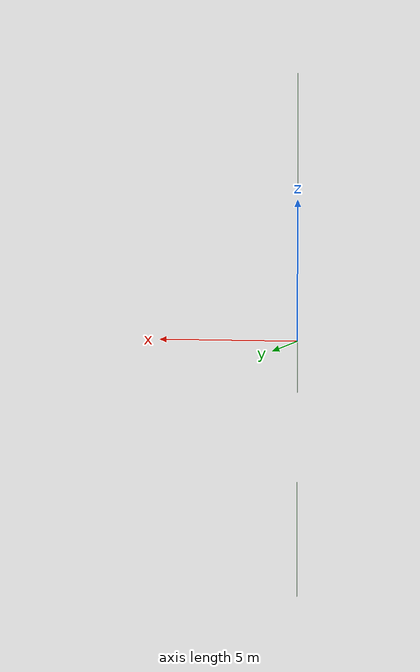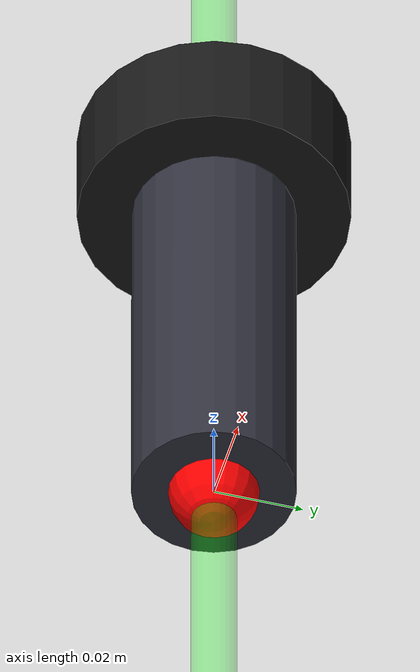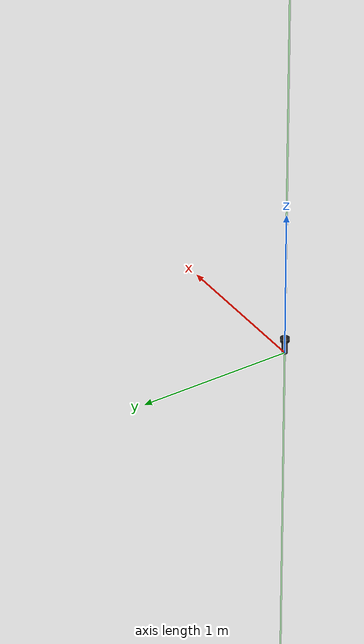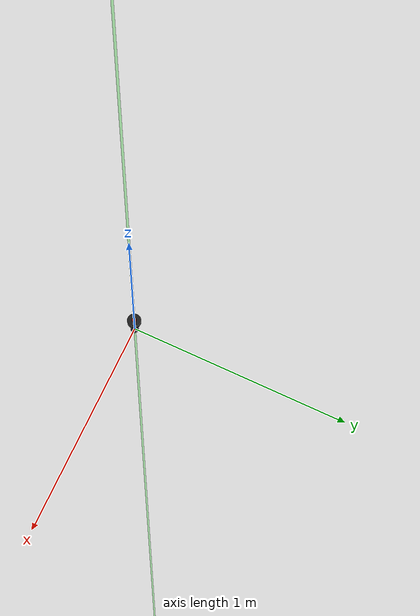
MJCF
<!--
  Vacuum 흡착 EE. robosuite에 진공 그리퍼가 없어 GripperModel 규약
  (worldbody → base → eef + 표준 site/sensor)을 지키는 커스텀 MJCF.
  외형: worldbody geom. 흡착: actuator/adhesion.
-->
<mujoco model="vacuum_gripper">
    <worldbody>
        <body name="vacuum_base" pos="0 0 0">
            <!-- 힘/토크 센서 프레임 -->
            <site name="ft_frame" pos="0 0 0" size="0.01" rgba="1 0 0 1" type="sphere" group="1"/>
            <inertial pos="0 0 0.05" mass="0.3" diaginertia="1e-3 1e-3 1e-3"/>

            <!-- +z: 손목 플랜지에서 대상 쪽. 자루로 컵을 ~11cm 내민다. -->
            <!-- 자루: Motion Planner 충돌 검사와 렌더링 geom을 분리한다. -->
            <geom name="vac_mount_col" type="cylinder" size="0.018 0.05" pos="0 0 0.05"
                  rgba="0.2 0.2 0.25 1" group="0" contype="1" conaffinity="1"/>
            <geom name="vac_mount" type="cylinder" size="0.018 0.05" pos="0 0 0.05"
                  rgba="0.2 0.2 0.25 1" group="1" contype="0" conaffinity="0"/>
            <!-- 흡착 컵. 접촉이 필요해서 충돌 ON. 뷰어는 group 0을 숨기므로 시각용 쌍을 둔다. -->
            <geom name="vac_cup" type="cylinder" size="0.03 0.012" pos="0 0 0.10"
                  rgba="0.1 0.1 0.1 1" group="0" contype="1" conaffinity="1"
                  margin="0.01" gap="0.01"/>
            <geom name="vac_cup_vis" type="cylinder" size="0.03 0.012" pos="0 0 0.10"
                  rgba="0.1 0.1 0.1 1" group="1" contype="0" conaffinity="0"/>

            <!-- 파지점. 이름은 반드시 eef. z=0.112는 컵 바깥면. -->
            <body name="eef" pos="0 0 0.112" quat="0.707105 0 0 -0.707105">
                <site name="grip_site" pos="0 0 0" size="0.01" rgba="1 0 0 0.5" type="sphere" group="1"/>
                <site name="ee_x" pos="0.1 0 0" size="0.005 .1" quat="0.707105 0 0.707108 0" rgba="1 0 0 0" type="cylinder" group="1"/>
                <site name="ee_y" pos="0 0.1 0" size="0.005 .1" quat="0.707105 0.707108 0 0" rgba="0 1 0 0" type="cylinder" group="1"/>
                <site name="ee_z" pos="0 0 0.1" size="0.005 .1" quat="1 0 0 0" rgba="0 0 1 0" type="cylinder" group="1"/>
                <site name="grip_site_cylinder" pos="0 0 0" size="0.005 10" rgba="0 1 0 0.3" type="cylinder" group="1"/>
            </body>
        </body>
    </worldbody>

    <!-- 흡착. ctrl 0=off ~ 1=최대. 그리퍼 컨트롤러가 액션 [-1,1]을 이 범위로 넣는다. -->
    <actuator>
        <adhesion name="vacuum" body="vacuum_base" ctrlrange="0 1" gain="80"/>
    </actuator>

    <sensor>
        <force name="force_ee" site="ft_frame"/>
        <torque name="torque_ee" site="ft_frame"/>
    </sensor>
</mujoco>
